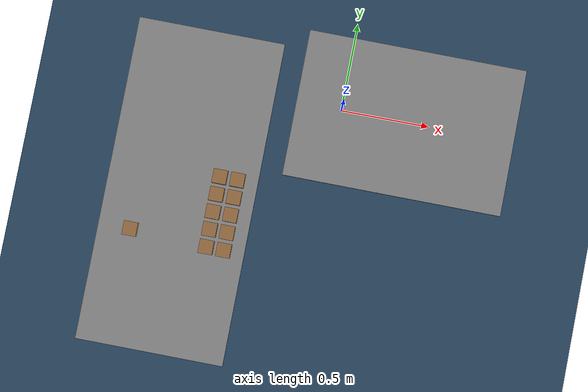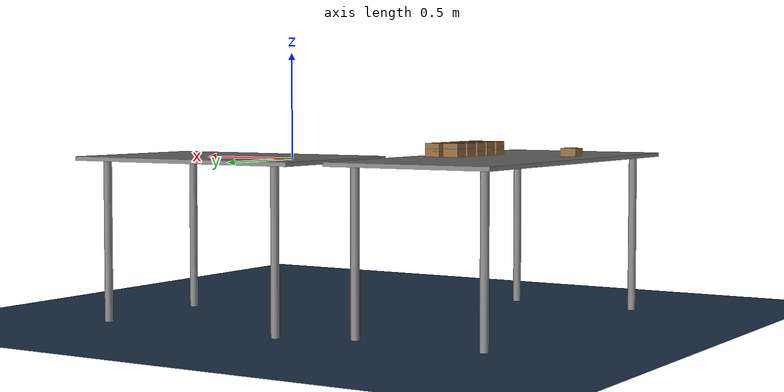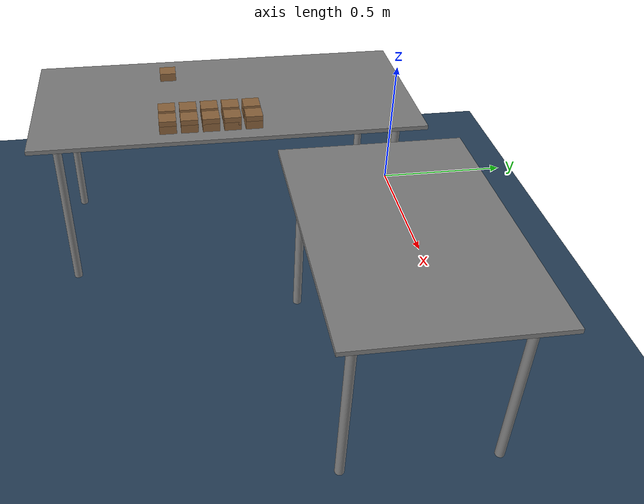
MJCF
<mujoco model="tableworld">
    <compiler eulerseq="XYZ"/>
    <statistic center="0.3 0 0.4" extent="0.8"/>

    <visual>
        <headlight diffuse="0.6 0.6 0.6" ambient="0.1 0.1 0.1"/>
        <rgba haze="0.15 0.25 0.35 1"/>
        <global azimuth="120" elevation="-20" offwidth="1280" offheight="720"/>
    </visual>

    <asset>
        <texture type="skybox" builtin="gradient" rgb1="0.3 0.5 0.7" rgb2="0 0 0" width="512" height="3072"/>
        <texture type="2d" name="groundplane" builtin="checker" mark="edge" rgb1="0.2 0.3 0.4" rgb2="0.1 0.2 0.3" markrgb="0.8 0.8 0.8" width="300" height="300"/>
        <material name="groundplane" texture="groundplane" texuniform="true" texrepeat="5 5" reflectance="0.2"/>

        <texture name="wood" file="wood.png" type="2d"/>
        <material name="wood_material" texture="wood" texrepeat="50 50" texuniform="true" rgba="0.8 0.8 0.8 1"/>
    </asset>

    <worldbody>
        <light pos="0 0 1.5" dir="0 0 -1" directional="true"/>

        <geom name="floor" pos="0.0 0.0 -0.8" size="0 0 0.05" type="plane" material="groundplane"/>

<!--         Tables and Walls-->
        <body name="table1" pos="0.365 0 -0.005">
            <geom name="table1_top" type="box" size="0.625 0.42 0.01" pos="0 0 0"/>
            <geom name="table1_leg_1" type="cylinder" size=".02 .4" pos=".5 -.33 -.4" euler="0 0 0"/>
            <geom name="table1_leg_2" type="cylinder" size=".02 .4" pos=".5 .33 -.4" euler="0 0 0"/>
            <geom name="table1_leg_3" type="cylinder" size=".02 .4" pos="-.5 -.33 -.4" euler="0 0 0"/>
            <geom name="table1_leg_4" type="cylinder" size=".02 .4" pos="-.5 .33 -.4" euler="0 0 0"/>
        </body>

        <body name="table2" pos="-0.805 -0.615 -0.005">
            <geom name="table2_top" type="box" size="0.42 0.925 0.01" pos="0 0 0"/>
            <geom name="table2_leg_1" type="cylinder" size=".02 .4" pos=".33 -.8 -.4" euler="0 0 0"/>
            <geom name="table2_leg_2" type="cylinder" size=".02 .4" pos=".33 .8 -.4" euler="0 0 0"/>
            <geom name="table2_leg_3" type="cylinder" size=".02 .4" pos="-.33 -.8 -.4" euler="0 0 0"/>
            <geom name="table2_leg_4" type="cylinder" size=".02 .4" pos="-.33 .8 -.4" euler="0 0 0"/>
        </body>

        <body name="block0" pos="-0.6 -0.50 0.05" quat="0. 0. 1. 0.">
            <freejoint name="block0_fj"/>
            <geom type="box" size=".04 .04 .02" material="wood_material"/>
        </body>
        <body name="block1" pos="-0.6 -0.60 0.05" quat="0. 0. 1. 0.">
            <freejoint name="block1_fj"/>
            <geom type="box" size=".04 .04 .02" material="wood_material"/>
        </body>
        <body name="block2" pos="-0.6 -0.70 0.05" quat="0. 0. 1. 0.">
            <freejoint name="block2_fj"/>
            <geom type="box" size=".04 .04 .02" material="wood_material"/>
        </body>
        <body name="block3" pos="-0.6 -0.80 0.05" quat="0. 0. 1. 0.">
            <freejoint name="block3_fj"/>
            <geom type="box" size=".04 .04 .02" material="wood_material"/>
        </body>
        <body name="block4" pos="-0.6 -0.90 0.05" quat="0. 0. 1. 0.">
            <freejoint name="block4_fj"/>
            <geom type="box" size=".04 .04 .02" material="wood_material"/>
        </body>
        <body name="block5" pos="-0.5 -0.50 0.05" quat="0. 0. 1. 0.">
            <freejoint name="block5_fj"/>
            <geom type="box" size=".04 .04 .02" material="wood_material"/>
        </body>
        <body name="block6" pos="-0.5 -0.60 0.05" quat="0. 0. 1. 0.">
            <freejoint name="block6_fj"/>
            <geom type="box" size=".04 .04 .02" material="wood_material"/>
        </body>
        <body name="block7" pos="-0.5 -0.70 0.05" quat="0. 0. 1. 0.">
            <freejoint name="block7_fj"/>
            <geom type="box" size=".04 .04 .02" material="wood_material"/>
        </body>
        <body name="block8" pos="-0.5 -0.80 0.05" quat="0. 0. 1. 0.">
            <freejoint name="block8_fj"/>
            <geom type="box" size=".04 .04 .02" material="wood_material"/>
        </body>
        <body name="block9" pos="-0.5 -0.90 0.05" quat="0. 0. 1. 0.">
            <freejoint name="block9_fj"/>
            <geom type="box" size=".04 .04 .02" material="wood_material"/>
        </body>

        <body name="block10" pos="-0.6 -0.50 0.025" quat="0. 0. 1. 0.">
            <freejoint name="block10_fj"/>
            <geom type="box" size=".04 .04 .02" material="wood_material"/>
        </body>
        <body name="block11" pos="-0.6 -0.60 0.025" quat="0. 0. 1. 0.">
            <freejoint name="block11_fj"/>
            <geom type="box" size=".04 .04 .02" material="wood_material"/>
        </body>
        <body name="block12" pos="-0.6 -0.70 0.025" quat="0. 0. 1. 0.">
            <freejoint name="block12_fj"/>
            <geom type="box" size=".04 .04 .02" material="wood_material"/>
        </body>
        <body name="block13" pos="-0.6 -0.80 0.025" quat="0. 0. 1. 0.">
            <freejoint name="block13_fj"/>
            <geom type="box" size=".04 .04 .02" material="wood_material"/>
        </body>
        <body name="block14" pos="-0.6 -0.90 0.025" quat="0. 0. 1. 0.">
            <freejoint name="block14_fj"/>
            <geom type="box" size=".04 .04 .02" material="wood_material"/>
        </body>
        <body name="block15" pos="-0.5 -0.50 0.025" quat="0. 0. 1. 0.">
            <freejoint name="block15_fj"/>
            <geom type="box" size=".04 .04 .02" material="wood_material"/>
        </body>
        <body name="block16" pos="-0.5 -0.60 0.025" quat="0. 0. 1. 0.">
            <freejoint name="block16_fj"/>
            <geom type="box" size=".04 .04 .02" material="wood_material"/>
        </body>
        <body name="block17" pos="-0.5 -0.70 0.025" quat="0. 0. 1. 0.">
            <freejoint name="block17_fj"/>
            <geom type="box" size=".04 .04 .02" material="wood_material"/>
        </body>
        <body name="block18" pos="-0.5 -0.80 0.025" quat="0. 0. 1. 0.">
            <freejoint name="block18_fj"/>
            <geom type="box" size=".04 .04 .02" material="wood_material"/>
        </body>
        <body name="block19" pos="-0.5 -0.90 0.025" quat="0. 0. 1. 0.">
            <freejoint name="block19_fj"/>
            <geom type="box" size=".04 .04 .02" material="wood_material"/>
        </body>
        <body name="block20" pos="-1.04 -0.88 0.025" quat="0. 0. 1. 0.">
            <freejoint name="block20_fj"/>
            <geom type="box" size=".04 .04 .02" material="wood_material"/>
        </body>

        <camera name="top-right" pos="1.3 -1.5 1.1" euler="1 0 1.1"/>

        <camera name="robot-cam" pos="1.3 -1.5 1.1" euler="1 0 1.1" fovy="60"/>
    </worldbody>
</mujoco>
